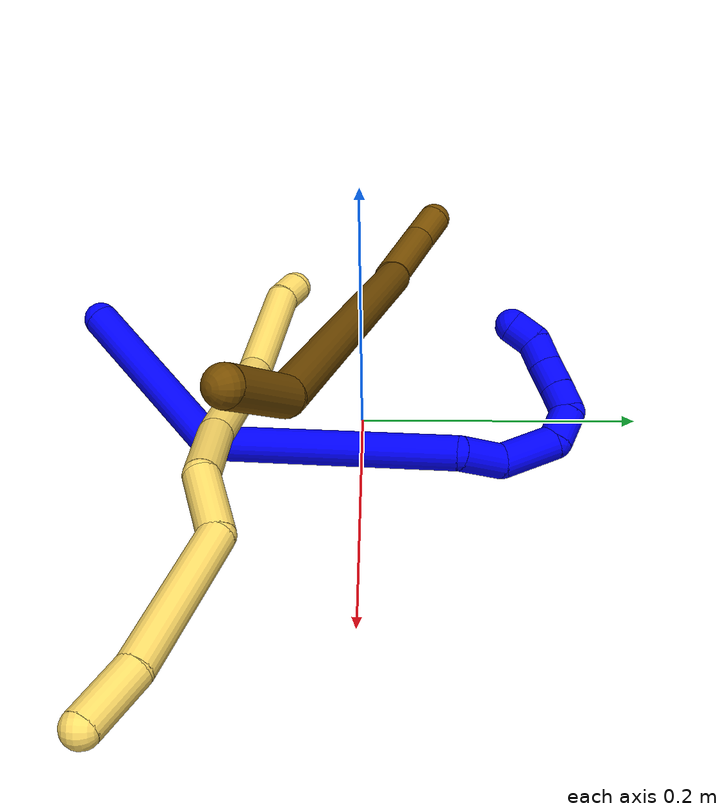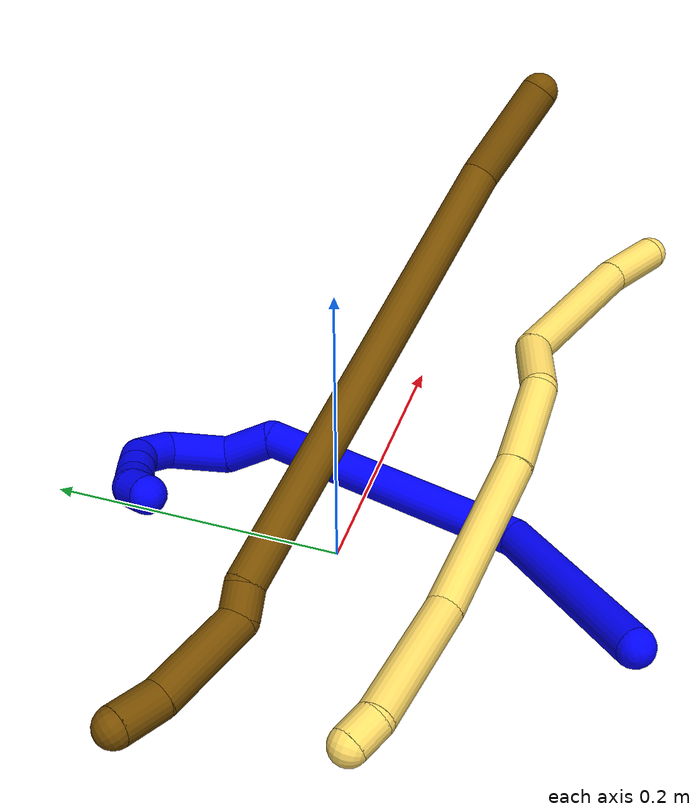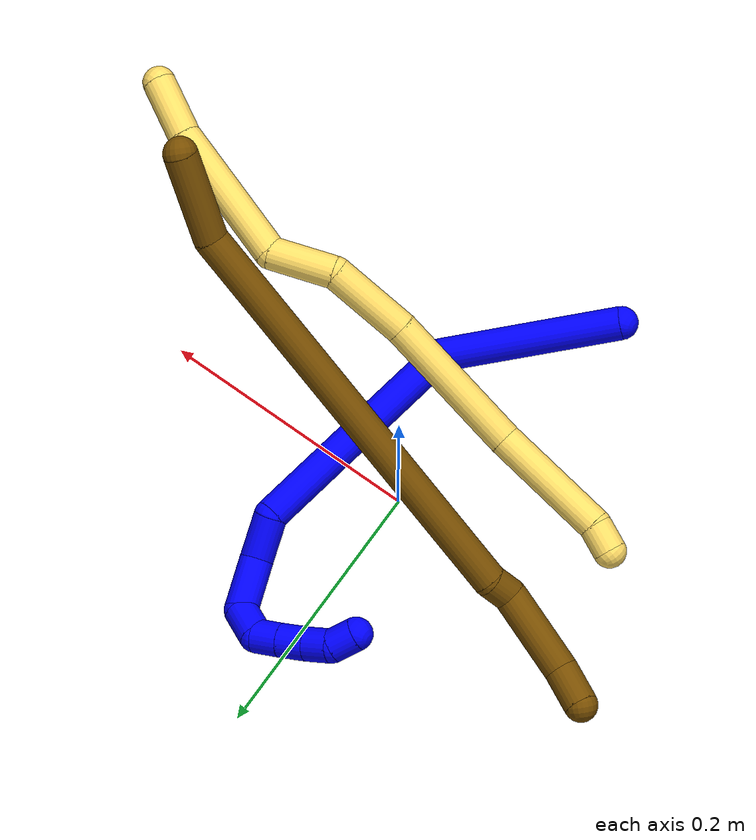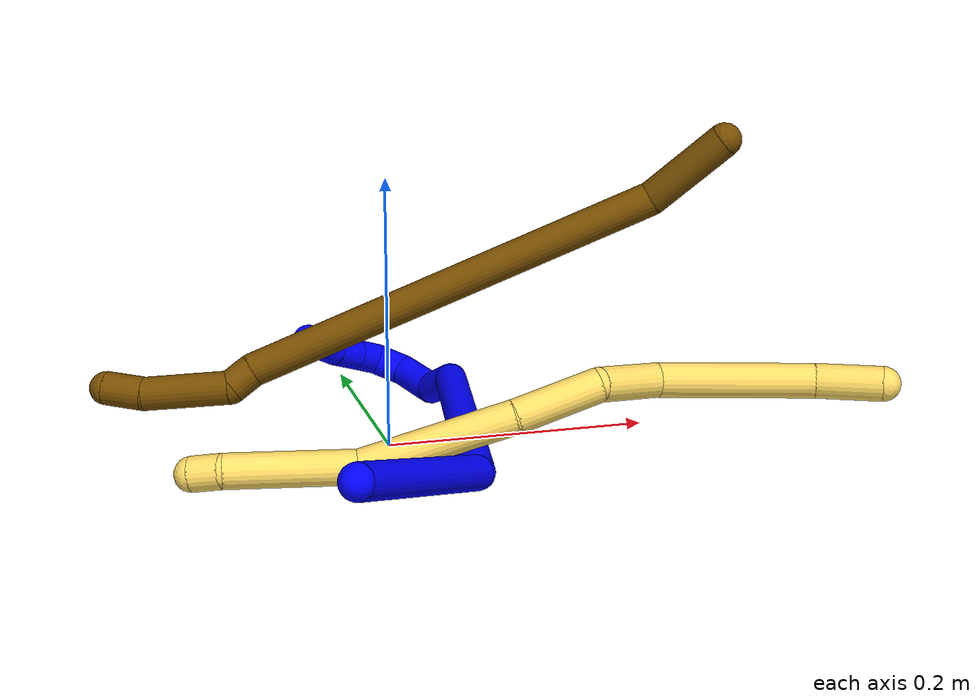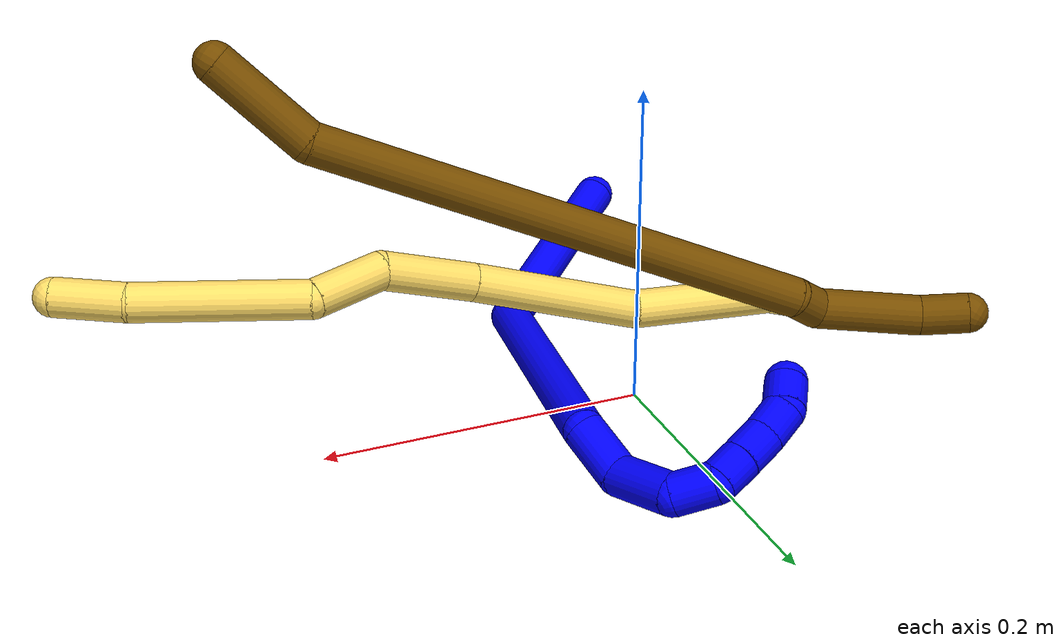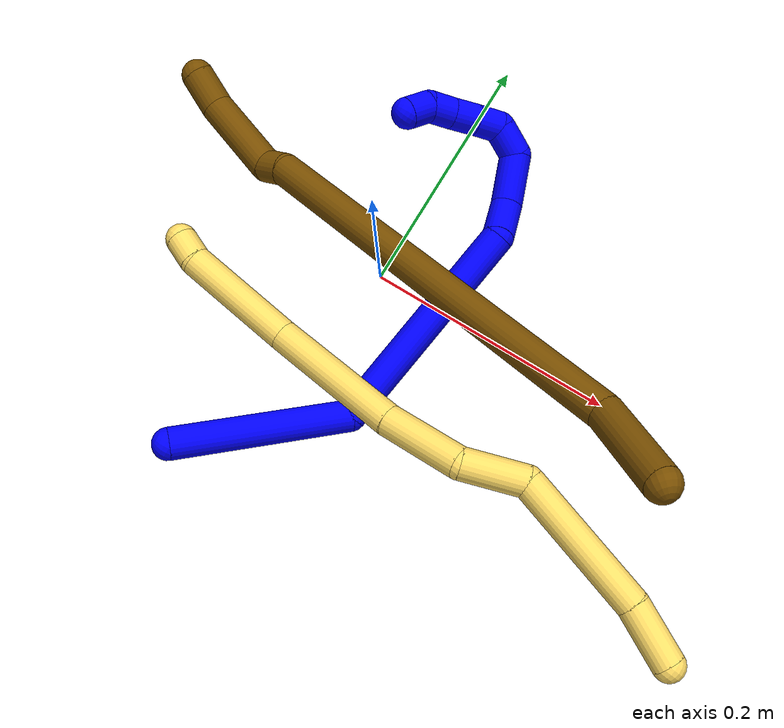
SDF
<sdf version="1.7">
 <world name="default">
  <model name="photoneo_s_sensor">
   <static>1</static>
   <pose>0 0 2 1.57079 1.57079 3.14159</pose>
   <link name="link">
    <inertial><mass>0.1</mass></inertial>
    <sensor name="sensor" type="depth">
     <update_rate>30</update_rate>
     <camera>
      <horizontal_fov>1.22</horizontal_fov>
      <image><width>1920</width><height>1200</height><format>B8G8R8</format></image>
      <clip><near>0.1</near><far>4</far></clip>
      <depth_camera><output>points</output></depth_camera>
     </camera>
     <plugin name="camera_plugin" filename="libgazebo_ros_depth_camera.so">
      <baseline>0.2</baseline>
      <alwaysOn>1</alwaysOn>
      <updateRate>0.0</updateRate>
      <cameraName>camera_ir</cameraName>
      <imageTopicName>/camera/color/image_raw</imageTopicName>
      <cameraInfoTopicName>/camera/color/camera_info</cameraInfoTopicName>
      <depthImageTopicName>/camera/depth/image_raw</depthImageTopicName>
      <depthImageCameraInfoTopicName>/camera/depth/camera_info</depthImageCameraInfoTopicName>
      <pointCloudTopicName>/camera/depth/points</pointCloudTopicName>
      <frameName>fr_optical</frameName>
      <pointCloudCutoff>0.1</pointCloudCutoff>
      <pointCloudCutoffMax>2.0</pointCloudCutoffMax>
      <distortionK1>0</distortionK1>
      <distortionK2>0</distortionK2>
      <distortionK3>0</distortionK3>
      <distortionT1>0</distortionT1>
      <distortionT2>0</distortionT2>
      <CxPrime>0</CxPrime>
      <Cx>0</Cx>
      <Cy>0</Cy>
      <focalLength>0</focalLength>
      <hackBaseline>0</hackBaseline>
     </plugin>
    </sensor>
   </link>
  </model>
  <model name="bin">
   <static>1</static>
   <link name="bottom">
    <collision name="collision-bottom">
     <pose>0 0 -0.01 0 -0 0</pose>
     <geometry><box><size>0.8 0.6 0.02</size></box></geometry>
     <surface>
      <friction><ode><mu>100</mu><mu2>100</mu2></ode></friction>
      <contact><collide_bitmask>65535</collide_bitmask></contact>
     </surface>
    </collision>
   </link>
   <link name="west_wall">
    <collision name="collision-west_wall">
     <pose>-0.41 0 0.1 0 -0 0</pose>
     <geometry><box><size>0.02 0.6 0.2</size></box></geometry>
     <surface>
      <friction><ode><mu>100</mu><mu2>100</mu2></ode></friction>
      <contact><collide_bitmask>65535</collide_bitmask></contact>
     </surface>
    </collision>
   </link>
   <link name="east_wall">
    <collision name="collision-east_wall">
     <pose>0.41 0 0.1 0 -0 0</pose>
     <geometry><box><size>0.02 0.6 0.2</size></box></geometry>
     <surface>
      <friction><ode><mu>100</mu><mu2>100</mu2></ode></friction>
      <contact><collide_bitmask>65535</collide_bitmask></contact>
     </surface>
    </collision>
   </link>
   <link name="south_wall">
    <collision name="collision-south_wall">
     <pose>0 -0.31 0.1 0 -0 0</pose>
     <geometry><box><size>0.8 0.02 0.2</size></box></geometry>
     <surface>
      <friction><ode><mu>100</mu><mu2>100</mu2></ode></friction>
      <contact><collide_bitmask>65535</collide_bitmask></contact>
     </surface>
    </collision>
   </link>
   <link name="north_wall">
    <collision name="collision-north_wall">
     <pose>0 0.31 0.1 0 -0 0</pose>
     <geometry><box><size>0.8 0.02 0.2</size></box></geometry>
     <surface>
      <friction><ode><mu>100</mu><mu2>100</mu2></ode></friction>
      <contact><collide_bitmask>65535</collide_bitmask></contact>
     </surface>
    </collision>
   </link>
  </model>
  <model name="1">
   <static>0</static>
   <link name="1">
    <collision name="collision-cylinder-e_1_1_4">
     <pose>0.007021 0.038446 -0.056787 -2.54646 0.102026 -0.329949</pose>
     <geometry><cylinder><radius>0.0125</radius><length>0.137871</length></cylinder></geometry>
     <surface>
      <friction><ode><mu>1.16</mu><mu2>1.16</mu2><slip1>0</slip1><slip2>0</slip2></ode></friction>
      <contact><ode><kp>1e+06</kp><kd>1</kd><max_vel>0</max_vel><min_depth>0.001</min_depth></ode></contact>
     </surface>
    </collision>
    <visual name="visual-cylinder-e_1_1_4">
     <pose>0.007021 0.038446 -0.056787 -2.54646 0.102026 -0.329949</pose>
     <geometry><cylinder><radius>0.0125</radius><length>0.137871</length></cylinder></geometry>
     <material><ambient>0 0 1 1</ambient></material>
    </visual>
    <collision name="collision-cylinder-e_2_4_5">
     <pose>0.035803 0.161761 -0.131811 -1.78247 0.245619 -0.3032</pose>
     <geometry><cylinder><radius>0.0125</radius><length>0.178985</length></cylinder></geometry>
     <surface>
      <friction><ode><mu>1.16</mu><mu2>1.16</mu2><slip1>0</slip1><slip2>0</slip2></ode></friction>
      <contact><ode><kp>1e+06</kp><kd>1</kd><max_vel>0</max_vel><min_depth>0.001</min_depth></ode></contact>
     </surface>
    </collision>
    <visual name="visual-cylinder-e_2_4_5">
     <pose>0.035803 0.161761 -0.131811 -1.78247 0.245619 -0.3032</pose>
     <geometry><cylinder><radius>0.0125</radius><length>0.178985</length></cylinder></geometry>
     <material><ambient>0 0 1 1</ambient></material>
    </visual>
    <collision name="collision-cylinder-e_3_5_6">
     <pose>0.050543 0.262602 -0.150451 -1.59594 -0.414039 0.424275</pose>
     <geometry><cylinder><radius>0.0125</radius><length>0.034903</length></cylinder></geometry>
     <surface>
      <friction><ode><mu>1.16</mu><mu2>1.16</mu2><slip1>0</slip1><slip2>0</slip2></ode></friction>
      <contact><ode><kp>1e+06</kp><kd>1</kd><max_vel>0</max_vel><min_depth>0.001</min_depth></ode></contact>
     </surface>
    </collision>
    <visual name="visual-cylinder-e_3_5_6">
     <pose>0.050543 0.262602 -0.150451 -1.59594 -0.414039 0.424275</pose>
     <geometry><cylinder><radius>0.0125</radius><length>0.034903</length></cylinder></geometry>
     <material><ambient>0 0 1 1</ambient></material>
    </visual>
    <collision name="collision-cylinder-e_4_6_7">
     <pose>0.045719 0.298369 -0.145038 -1.28511 0.106073 -0.079431</pose>
     <geometry><cylinder><radius>0.0125</radius><length>0.041497</length></cylinder></geometry>
     <surface>
      <friction><ode><mu>1.16</mu><mu2>1.16</mu2><slip1>0</slip1><slip2>0</slip2></ode></friction>
      <contact><ode><kp>1e+06</kp><kd>1</kd><max_vel>0</max_vel><min_depth>0.001</min_depth></ode></contact>
     </surface>
    </collision>
    <visual name="visual-cylinder-e_4_6_7">
     <pose>0.045719 0.298369 -0.145038 -1.28511 0.106073 -0.079431</pose>
     <geometry><cylinder><radius>0.0125</radius><length>0.041497</length></cylinder></geometry>
     <material><ambient>0 0 1 1</ambient></material>
    </visual>
    <collision name="collision-cylinder-e_5_7_8">
     <pose>0.048677 0.324399 -0.128197 -0.514532 0.060035 -0.0158</pose>
     <geometry><cylinder><radius>0.0125</radius><length>0.02538</length></cylinder></geometry>
     <surface>
      <friction><ode><mu>1.16</mu><mu2>1.16</mu2><slip1>0</slip1><slip2>0</slip2></ode></friction>
      <contact><ode><kp>1e+06</kp><kd>1</kd><max_vel>0</max_vel><min_depth>0.001</min_depth></ode></contact>
     </surface>
    </collision>
    <visual name="visual-cylinder-e_5_7_8">
     <pose>0.048677 0.324399 -0.128197 -0.514532 0.060035 -0.0158</pose>
     <geometry><cylinder><radius>0.0125</radius><length>0.02538</length></cylinder></geometry>
     <material><ambient>0 0 1 1</ambient></material>
    </visual>
    <collision name="collision-cylinder-e_6_8_9">
     <pose>0.048938 0.328246 -0.107415 0.239973 -0.049736 -0.005998</pose>
     <geometry><cylinder><radius>0.0125</radius><length>0.020109</length></cylinder></geometry>
     <surface>
      <friction><ode><mu>1.16</mu><mu2>1.16</mu2><slip1>0</slip1><slip2>0</slip2></ode></friction>
      <contact><ode><kp>1e+06</kp><kd>1</kd><max_vel>0</max_vel><min_depth>0.001</min_depth></ode></contact>
     </surface>
    </collision>
    <visual name="visual-cylinder-e_6_8_9">
     <pose>0.048938 0.328246 -0.107415 0.239973 -0.049736 -0.005998</pose>
     <geometry><cylinder><radius>0.0125</radius><length>0.020109</length></cylinder></geometry>
     <material><ambient>0 0 1 1</ambient></material>
    </visual>
    <collision name="collision-cylinder-e_7_9_10">
     <pose>0.047911 0.323024 -0.087527 0.27279 -0.050065 -0.006873</pose>
     <geometry><cylinder><radius>0.0125</radius><length>0.021072</length></cylinder></geometry>
     <surface>
      <friction><ode><mu>1.16</mu><mu2>1.16</mu2><slip1>0</slip1><slip2>0</slip2></ode></friction>
      <contact><ode><kp>1e+06</kp><kd>1</kd><max_vel>0</max_vel><min_depth>0.001</min_depth></ode></contact>
     </surface>
    </collision>
    <visual name="visual-cylinder-e_7_9_10">
     <pose>0.047911 0.323024 -0.087527 0.27279 -0.050065 -0.006873</pose>
     <geometry><cylinder><radius>0.0125</radius><length>0.021072</length></cylinder></geometry>
     <material><ambient>0 0 1 1</ambient></material>
    </visual>
    <collision name="collision-cylinder-e_8_10_11">
     <pose>0.048265 0.317351 -0.06779 0.287287 0.087772 0.012703</pose>
     <geometry><cylinder><radius>0.0125</radius><length>0.020106</length></cylinder></geometry>
     <surface>
      <friction><ode><mu>1.16</mu><mu2>1.16</mu2><slip1>0</slip1><slip2>0</slip2></ode></friction>
      <contact><ode><kp>1e+06</kp><kd>1</kd><max_vel>0</max_vel><min_depth>0.001</min_depth></ode></contact>
     </surface>
    </collision>
    <visual name="visual-cylinder-e_8_10_11">
     <pose>0.048265 0.317351 -0.06779 0.287287 0.087772 0.012703</pose>
     <geometry><cylinder><radius>0.0125</radius><length>0.020106</length></cylinder></geometry>
     <material><ambient>0 0 1 1</ambient></material>
    </visual>
    <collision name="collision-cylinder-e_9_11_2">
     <pose>0.049776 0.307043 -0.051511 0.841617 0.062762 0.028096</pose>
     <geometry><cylinder><radius>0.0125</radius><length>0.020076</length></cylinder></geometry>
     <surface>
      <friction><ode><mu>1.16</mu><mu2>1.16</mu2><slip1>0</slip1><slip2>0</slip2></ode></friction>
      <contact><ode><kp>1e+06</kp><kd>1</kd><max_vel>0</max_vel><min_depth>0.001</min_depth></ode></contact>
     </surface>
    </collision>
    <visual name="visual-cylinder-e_9_11_2">
     <pose>0.049776 0.307043 -0.051511 0.841617 0.062762 0.028096</pose>
     <geometry><cylinder><radius>0.0125</radius><length>0.020076</length></cylinder></geometry>
     <material><ambient>0 0 1 1</ambient></material>
    </visual>
    <collision name="collision-sphere-2">
     <pose>0.050405 0.299572 -0.044836 0 -0 0</pose>
     <geometry><sphere><radius>0.0125</radius></sphere></geometry>
     <surface>
      <friction><ode><mu>1.16</mu><mu2>1.16</mu2><slip1>0</slip1><slip2>0</slip2></ode></friction>
      <contact><ode><kp>1e+06</kp><kd>1</kd><max_vel>0</max_vel><min_depth>0.001</min_depth></ode></contact>
     </surface>
    </collision>
    <visual name="visual-sphere-2">
     <pose>0.050405 0.299572 -0.044836 0 -0 0</pose>
     <geometry><sphere><radius>0.0125</radius></sphere></geometry>
     <material><ambient>0 0 1 1</ambient></material>
    </visual>
    <collision name="collision-sphere-11">
     <pose>0.049146 0.314514 -0.058185 0 -0 0</pose>
     <geometry><sphere><radius>0.0125</radius></sphere></geometry>
     <surface>
      <friction><ode><mu>1.16</mu><mu2>1.16</mu2><slip1>0</slip1><slip2>0</slip2></ode></friction>
      <contact><ode><kp>1e+06</kp><kd>1</kd><max_vel>0</max_vel><min_depth>0.001</min_depth></ode></contact>
     </surface>
    </collision>
    <visual name="visual-sphere-11">
     <pose>0.049146 0.314514 -0.058185 0 -0 0</pose>
     <geometry><sphere><radius>0.0125</radius></sphere></geometry>
     <material><ambient>0 0 1 1</ambient></material>
    </visual>
    <collision name="collision-sphere-10">
     <pose>0.047384 0.320189 -0.077394 0 -0 0</pose>
     <geometry><sphere><radius>0.0125</radius></sphere></geometry>
     <surface>
      <friction><ode><mu>1.16</mu><mu2>1.16</mu2><slip1>0</slip1><slip2>0</slip2></ode></friction>
      <contact><ode><kp>1e+06</kp><kd>1</kd><max_vel>0</max_vel><min_depth>0.001</min_depth></ode></contact>
     </surface>
    </collision>
    <visual name="visual-sphere-10">
     <pose>0.047384 0.320189 -0.077394 0 -0 0</pose>
     <geometry><sphere><radius>0.0125</radius></sphere></geometry>
     <material><ambient>0 0 1 1</ambient></material>
    </visual>
    <collision name="collision-sphere-9">
     <pose>0.048438 0.325859 -0.097661 0 -0 0</pose>
     <geometry><sphere><radius>0.0125</radius></sphere></geometry>
     <surface>
      <friction><ode><mu>1.16</mu><mu2>1.16</mu2><slip1>0</slip1><slip2>0</slip2></ode></friction>
      <contact><ode><kp>1e+06</kp><kd>1</kd><max_vel>0</max_vel><min_depth>0.001</min_depth></ode></contact>
     </surface>
    </collision>
    <visual name="visual-sphere-9">
     <pose>0.048438 0.325859 -0.097661 0 -0 0</pose>
     <geometry><sphere><radius>0.0125</radius></sphere></geometry>
     <material><ambient>0 0 1 1</ambient></material>
    </visual>
    <collision name="collision-sphere-4">
     <pose>0.014042 0.076892 -0.113574 0 -0 0</pose>
     <geometry><sphere><radius>0.0125</radius></sphere></geometry>
     <surface>
      <friction><ode><mu>1.16</mu><mu2>1.16</mu2><slip1>0</slip1><slip2>0</slip2></ode></friction>
      <contact><ode><kp>1e+06</kp><kd>1</kd><max_vel>0</max_vel><min_depth>0.001</min_depth></ode></contact>
     </surface>
    </collision>
    <visual name="visual-sphere-4">
     <pose>0.014042 0.076892 -0.113574 0 -0 0</pose>
     <geometry><sphere><radius>0.0125</radius></sphere></geometry>
     <material><ambient>0 0 1 1</ambient></material>
    </visual>
    <collision name="collision-sphere-1">
     <geometry><sphere><radius>0.0125</radius></sphere></geometry>
     <surface>
      <friction><ode><mu>1.16</mu><mu2>1.16</mu2><slip1>0</slip1><slip2>0</slip2></ode></friction>
      <contact><ode><kp>1e+06</kp><kd>1</kd><max_vel>0</max_vel><min_depth>0.001</min_depth></ode></contact>
     </surface>
    </collision>
    <visual name="visual-sphere-1">
     <geometry><sphere><radius>0.0125</radius></sphere></geometry>
     <material><ambient>0 0 1 1</ambient></material>
    </visual>
    <collision name="collision-sphere-8">
     <pose>0.049438 0.330633 -0.11717 0 -0 0</pose>
     <geometry><sphere><radius>0.0125</radius></sphere></geometry>
     <surface>
      <friction><ode><mu>1.16</mu><mu2>1.16</mu2><slip1>0</slip1><slip2>0</slip2></ode></friction>
      <contact><ode><kp>1e+06</kp><kd>1</kd><max_vel>0</max_vel><min_depth>0.001</min_depth></ode></contact>
     </surface>
    </collision>
    <visual name="visual-sphere-8">
     <pose>0.049438 0.330633 -0.11717 0 -0 0</pose>
     <geometry><sphere><radius>0.0125</radius></sphere></geometry>
     <material><ambient>0 0 1 1</ambient></material>
    </visual>
    <collision name="collision-sphere-5">
     <pose>0.057564 0.24663 -0.150049 0 -0 0</pose>
     <geometry><sphere><radius>0.0125</radius></sphere></geometry>
     <surface>
      <friction><ode><mu>1.16</mu><mu2>1.16</mu2><slip1>0</slip1><slip2>0</slip2></ode></friction>
      <contact><ode><kp>1e+06</kp><kd>1</kd><max_vel>0</max_vel><min_depth>0.001</min_depth></ode></contact>
     </surface>
    </collision>
    <visual name="visual-sphere-5">
     <pose>0.057564 0.24663 -0.150049 0 -0 0</pose>
     <geometry><sphere><radius>0.0125</radius></sphere></geometry>
     <material><ambient>0 0 1 1</ambient></material>
    </visual>
    <collision name="collision-sphere-6">
     <pose>0.043522 0.278574 -0.150852 0 -0 0</pose>
     <geometry><sphere><radius>0.0125</radius></sphere></geometry>
     <surface>
      <friction><ode><mu>1.16</mu><mu2>1.16</mu2><slip1>0</slip1><slip2>0</slip2></ode></friction>
      <contact><ode><kp>1e+06</kp><kd>1</kd><max_vel>0</max_vel><min_depth>0.001</min_depth></ode></contact>
     </surface>
    </collision>
    <visual name="visual-sphere-6">
     <pose>0.043522 0.278574 -0.150852 0 -0 0</pose>
     <geometry><sphere><radius>0.0125</radius></sphere></geometry>
     <material><ambient>0 0 1 1</ambient></material>
    </visual>
    <collision name="collision-sphere-7">
     <pose>0.047915 0.318165 -0.139224 0 -0 0</pose>
     <geometry><sphere><radius>0.0125</radius></sphere></geometry>
     <surface>
      <friction><ode><mu>1.16</mu><mu2>1.16</mu2><slip1>0</slip1><slip2>0</slip2></ode></friction>
      <contact><ode><kp>1e+06</kp><kd>1</kd><max_vel>0</max_vel><min_depth>0.001</min_depth></ode></contact>
     </surface>
    </collision>
    <visual name="visual-sphere-7">
     <pose>0.047915 0.318165 -0.139224 0 -0 0</pose>
     <geometry><sphere><radius>0.0125</radius></sphere></geometry>
     <material><ambient>0 0 1 1</ambient></material>
    </visual>
    <inertial>
     <pose>0.032473 0.179972 -0.104693 0 -0 0</pose>
     <mass>0.5</mass>
     <inertia>
      <ixx>0.000472</ixx>
      <ixy>0</ixy>
      <ixz>0</ixz>
      <iyy>-0.000412</iyy>
      <iyz>0</iyz>
      <izz>-0.000738</izz>
     </inertia>
    </inertial>
   </link>
   <pose>-0.061044 -0.196663 0.04571 -0.169611 -1.18303 0.291144</pose>
  </model>
  <model name="5">
   <static>0</static>
   <link name="5">
    <collision name="collision-cylinder-e_1_1_4">
     <pose>-0.02041 0.007263 -0.008837 -2.45363 -1.05994 2.04404</pose>
     <geometry><cylinder><radius>0.0125</radius><length>0.046793</length></cylinder></geometry>
     <surface>
      <friction><ode><mu>1.16</mu><mu2>1.16</mu2><slip1>0</slip1><slip2>0</slip2></ode></friction>
      <contact><ode><kp>1e+06</kp><kd>1</kd><max_vel>0</max_vel><min_depth>0.001</min_depth></ode></contact>
     </surface>
    </collision>
    <visual name="visual-cylinder-e_1_1_4">
     <pose>-0.02041 0.007263 -0.008837 -2.45363 -1.05994 2.04404</pose>
     <geometry><cylinder><radius>0.0125</radius><length>0.046793</length></cylinder></geometry>
     <material><ambient>1 0.858824 0.4 1</ambient></material>
    </visual>
    <collision name="collision-cylinder-e_2_4_5">
     <pose>-0.091836 0.034262 -0.02915 -2.0975 -1.15004 1.68965</pose>
     <geometry><cylinder><radius>0.0125</radius><length>0.111784</length></cylinder></geometry>
     <surface>
      <friction><ode><mu>1.16</mu><mu2>1.16</mu2><slip1>0</slip1><slip2>0</slip2></ode></friction>
      <contact><ode><kp>1e+06</kp><kd>1</kd><max_vel>0</max_vel><min_depth>0.001</min_depth></ode></contact>
     </surface>
    </collision>
    <visual name="visual-cylinder-e_2_4_5">
     <pose>-0.091836 0.034262 -0.02915 -2.0975 -1.15004 1.68965</pose>
     <geometry><cylinder><radius>0.0125</radius><length>0.111784</length></cylinder></geometry>
     <material><ambient>1 0.858824 0.4 1</ambient></material>
    </visual>
    <collision name="collision-cylinder-e_3_5_6">
     <pose>-0.163153 0.065902 -0.030871 -0.884307 -0.922065 0.46193</pose>
     <geometry><cylinder><radius>0.0125</radius><length>0.05095</length></cylinder></geometry>
     <surface>
      <friction><ode><mu>1.16</mu><mu2>1.16</mu2><slip1>0</slip1><slip2>0</slip2></ode></friction>
      <contact><ode><kp>1e+06</kp><kd>1</kd><max_vel>0</max_vel><min_depth>0.001</min_depth></ode></contact>
     </surface>
    </collision>
    <visual name="visual-cylinder-e_3_5_6">
     <pose>-0.163153 0.065902 -0.030871 -0.884307 -0.922065 0.46193</pose>
     <geometry><cylinder><radius>0.0125</radius><length>0.05095</length></cylinder></geometry>
     <material><ambient>1 0.858824 0.4 1</ambient></material>
    </visual>
    <collision name="collision-cylinder-e_4_6_7">
     <pose>-0.214784 0.081171 -0.017434 -0.740371 -1.41297 0.639656</pose>
     <geometry><cylinder><radius>0.0125</radius><length>0.063451</length></cylinder></geometry>
     <surface>
      <friction><ode><mu>1.16</mu><mu2>1.16</mu2><slip1>0</slip1><slip2>0</slip2></ode></friction>
      <contact><ode><kp>1e+06</kp><kd>1</kd><max_vel>0</max_vel><min_depth>0.001</min_depth></ode></contact>
     </surface>
    </collision>
    <visual name="visual-cylinder-e_4_6_7">
     <pose>-0.214784 0.081171 -0.017434 -0.740371 -1.41297 0.639656</pose>
     <geometry><cylinder><radius>0.0125</radius><length>0.063451</length></cylinder></geometry>
     <material><ambient>1 0.858824 0.4 1</ambient></material>
    </visual>
    <collision name="collision-cylinder-e_5_7_8">
     <pose>-0.302026 0.090715 -0.014211 -1.64473 -1.46039 1.53418</pose>
     <geometry><cylinder><radius>0.0125</radius><length>0.112506</length></cylinder></geometry>
     <surface>
      <friction><ode><mu>1.16</mu><mu2>1.16</mu2><slip1>0</slip1><slip2>0</slip2></ode></friction>
      <contact><ode><kp>1e+06</kp><kd>1</kd><max_vel>0</max_vel><min_depth>0.001</min_depth></ode></contact>
     </surface>
    </collision>
    <visual name="visual-cylinder-e_5_7_8">
     <pose>-0.302026 0.090715 -0.014211 -1.64473 -1.46039 1.53418</pose>
     <geometry><cylinder><radius>0.0125</radius><length>0.112506</length></cylinder></geometry>
     <material><ambient>1 0.858824 0.4 1</ambient></material>
    </visual>
    <collision name="collision-cylinder-e_6_8_9">
     <pose>-0.400447 0.114932 -0.016615 -1.67831 -1.16746 1.26849</pose>
     <geometry><cylinder><radius>0.0125</radius><length>0.09244</length></cylinder></geometry>
     <surface>
      <friction><ode><mu>1.16</mu><mu2>1.16</mu2><slip1>0</slip1><slip2>0</slip2></ode></friction>
      <contact><ode><kp>1e+06</kp><kd>1</kd><max_vel>0</max_vel><min_depth>0.001</min_depth></ode></contact>
     </surface>
    </collision>
    <visual name="visual-cylinder-e_6_8_9">
     <pose>-0.400447 0.114932 -0.016615 -1.67831 -1.16746 1.26849</pose>
     <geometry><cylinder><radius>0.0125</radius><length>0.09244</length></cylinder></geometry>
     <material><ambient>1 0.858824 0.4 1</ambient></material>
    </visual>
    <collision name="collision-cylinder-e_7_9_2">
     <pose>-0.453274 0.135247 -0.021761 -2.52271 -1.20696 2.27297</pose>
     <geometry><cylinder><radius>0.0125</radius><length>0.022076</length></cylinder></geometry>
     <surface>
      <friction><ode><mu>1.16</mu><mu2>1.16</mu2><slip1>0</slip1><slip2>0</slip2></ode></friction>
      <contact><ode><kp>1e+06</kp><kd>1</kd><max_vel>0</max_vel><min_depth>0.001</min_depth></ode></contact>
     </surface>
    </collision>
    <visual name="visual-cylinder-e_7_9_2">
     <pose>-0.453274 0.135247 -0.021761 -2.52271 -1.20696 2.27297</pose>
     <geometry><cylinder><radius>0.0125</radius><length>0.022076</length></cylinder></geometry>
     <material><ambient>1 0.858824 0.4 1</ambient></material>
    </visual>
    <collision name="collision-sphere-2">
     <pose>-0.463589 0.137526 -0.024961 0 -0 0</pose>
     <geometry><sphere><radius>0.0125</radius></sphere></geometry>
     <surface>
      <friction><ode><mu>1.16</mu><mu2>1.16</mu2><slip1>0</slip1><slip2>0</slip2></ode></friction>
      <contact><ode><kp>1e+06</kp><kd>1</kd><max_vel>0</max_vel><min_depth>0.001</min_depth></ode></contact>
     </surface>
    </collision>
    <visual name="visual-sphere-2">
     <pose>-0.463589 0.137526 -0.024961 0 -0 0</pose>
     <geometry><sphere><radius>0.0125</radius></sphere></geometry>
     <material><ambient>1 0.858824 0.4 1</ambient></material>
    </visual>
    <collision name="collision-sphere-9">
     <pose>-0.442958 0.132968 -0.018562 0 -0 0</pose>
     <geometry><sphere><radius>0.0125</radius></sphere></geometry>
     <surface>
      <friction><ode><mu>1.16</mu><mu2>1.16</mu2><slip1>0</slip1><slip2>0</slip2></ode></friction>
      <contact><ode><kp>1e+06</kp><kd>1</kd><max_vel>0</max_vel><min_depth>0.001</min_depth></ode></contact>
     </surface>
    </collision>
    <visual name="visual-sphere-9">
     <pose>-0.442958 0.132968 -0.018562 0 -0 0</pose>
     <geometry><sphere><radius>0.0125</radius></sphere></geometry>
     <material><ambient>1 0.858824 0.4 1</ambient></material>
    </visual>
    <collision name="collision-sphere-4">
     <pose>-0.040819 0.014527 -0.017675 0 -0 0</pose>
     <geometry><sphere><radius>0.0125</radius></sphere></geometry>
     <surface>
      <friction><ode><mu>1.16</mu><mu2>1.16</mu2><slip1>0</slip1><slip2>0</slip2></ode></friction>
      <contact><ode><kp>1e+06</kp><kd>1</kd><max_vel>0</max_vel><min_depth>0.001</min_depth></ode></contact>
     </surface>
    </collision>
    <visual name="visual-sphere-4">
     <pose>-0.040819 0.014527 -0.017675 0 -0 0</pose>
     <geometry><sphere><radius>0.0125</radius></sphere></geometry>
     <material><ambient>1 0.858824 0.4 1</ambient></material>
    </visual>
    <collision name="collision-sphere-1">
     <geometry><sphere><radius>0.0125</radius></sphere></geometry>
     <surface>
      <friction><ode><mu>1.16</mu><mu2>1.16</mu2><slip1>0</slip1><slip2>0</slip2></ode></friction>
      <contact><ode><kp>1e+06</kp><kd>1</kd><max_vel>0</max_vel><min_depth>0.001</min_depth></ode></contact>
     </surface>
    </collision>
    <visual name="visual-sphere-1">
     <geometry><sphere><radius>0.0125</radius></sphere></geometry>
     <material><ambient>1 0.858824 0.4 1</ambient></material>
    </visual>
    <collision name="collision-sphere-8">
     <pose>-0.357936 0.096896 -0.014669 0 -0 0</pose>
     <geometry><sphere><radius>0.0125</radius></sphere></geometry>
     <surface>
      <friction><ode><mu>1.16</mu><mu2>1.16</mu2><slip1>0</slip1><slip2>0</slip2></ode></friction>
      <contact><ode><kp>1e+06</kp><kd>1</kd><max_vel>0</max_vel><min_depth>0.001</min_depth></ode></contact>
     </surface>
    </collision>
    <visual name="visual-sphere-8">
     <pose>-0.357936 0.096896 -0.014669 0 -0 0</pose>
     <geometry><sphere><radius>0.0125</radius></sphere></geometry>
     <material><ambient>1 0.858824 0.4 1</ambient></material>
    </visual>
    <collision name="collision-sphere-5">
     <pose>-0.142853 0.053997 -0.040626 0 -0 0</pose>
     <geometry><sphere><radius>0.0125</radius></sphere></geometry>
     <surface>
      <friction><ode><mu>1.16</mu><mu2>1.16</mu2><slip1>0</slip1><slip2>0</slip2></ode></friction>
      <contact><ode><kp>1e+06</kp><kd>1</kd><max_vel>0</max_vel><min_depth>0.001</min_depth></ode></contact>
     </surface>
    </collision>
    <visual name="visual-sphere-5">
     <pose>-0.142853 0.053997 -0.040626 0 -0 0</pose>
     <geometry><sphere><radius>0.0125</radius></sphere></geometry>
     <material><ambient>1 0.858824 0.4 1</ambient></material>
    </visual>
    <collision name="collision-sphere-6">
     <pose>-0.183453 0.077807 -0.021115 0 -0 0</pose>
     <geometry><sphere><radius>0.0125</radius></sphere></geometry>
     <surface>
      <friction><ode><mu>1.16</mu><mu2>1.16</mu2><slip1>0</slip1><slip2>0</slip2></ode></friction>
      <contact><ode><kp>1e+06</kp><kd>1</kd><max_vel>0</max_vel><min_depth>0.001</min_depth></ode></contact>
     </surface>
    </collision>
    <visual name="visual-sphere-6">
     <pose>-0.183453 0.077807 -0.021115 0 -0 0</pose>
     <geometry><sphere><radius>0.0125</radius></sphere></geometry>
     <material><ambient>1 0.858824 0.4 1</ambient></material>
    </visual>
    <collision name="collision-sphere-7">
     <pose>-0.246116 0.084534 -0.013753 0 -0 0</pose>
     <geometry><sphere><radius>0.0125</radius></sphere></geometry>
     <surface>
      <friction><ode><mu>1.16</mu><mu2>1.16</mu2><slip1>0</slip1><slip2>0</slip2></ode></friction>
      <contact><ode><kp>1e+06</kp><kd>1</kd><max_vel>0</max_vel><min_depth>0.001</min_depth></ode></contact>
     </surface>
    </collision>
    <visual name="visual-sphere-7">
     <pose>-0.246116 0.084534 -0.013753 0 -0 0</pose>
     <geometry><sphere><radius>0.0125</radius></sphere></geometry>
     <material><ambient>1 0.858824 0.4 1</ambient></material>
    </visual>
    <inertial>
     <pose>-0.22833 0.072988 -0.019933 0 -0 0</pose>
     <mass>0.5</mass>
     <inertia>
      <ixx>7.3e-05</ixx>
      <ixy>0</ixy>
      <ixz>0</ixz>
      <iyy>0.000437</iyy>
      <iyz>0</iyz>
      <izz>0.000244</izz>
     </inertia>
    </inertial>
   </link>
   <pose>0.324059 -0.145038 0.06247 1.6716 -0.397513 -0.160014</pose>
  </model>
  <model name="12">
   <static>0</static>
   <link name="12">
    <collision name="collision-cylinder-e_1_1_4">
     <pose>-0.006526 -0.010926 -0.031329 2.80604 -0.194202 -1.04385</pose>
     <geometry><cylinder><radius>0.0125</radius><length>0.06763</length></cylinder></geometry>
     <surface>
      <friction><ode><mu>1.16</mu><mu2>1.16</mu2><slip1>0</slip1><slip2>0</slip2></ode></friction>
      <contact><ode><kp>1e+06</kp><kd>1</kd><max_vel>0</max_vel><min_depth>0.001</min_depth></ode></contact>
     </surface>
    </collision>
    <visual name="visual-cylinder-e_1_1_4">
     <pose>-0.006526 -0.010926 -0.031329 2.80604 -0.194202 -1.04385</pose>
     <geometry><cylinder><radius>0.0125</radius><length>0.06763</length></cylinder></geometry>
     <material><ambient>0.466667 0.301961 0 1</ambient></material>
    </visual>
    <collision name="collision-cylinder-e_2_4_5">
     <pose>-0.094217 -0.031192 -0.198596 3.07298 -0.537229 -2.89353</pose>
     <geometry><cylinder><radius>0.0125</radius><length>0.317203</length></cylinder></geometry>
     <surface>
      <friction><ode><mu>1.16</mu><mu2>1.16</mu2><slip1>0</slip1><slip2>0</slip2></ode></friction>
      <contact><ode><kp>1e+06</kp><kd>1</kd><max_vel>0</max_vel><min_depth>0.001</min_depth></ode></contact>
     </surface>
    </collision>
    <visual name="visual-cylinder-e_2_4_5">
     <pose>-0.094217 -0.031192 -0.198596 3.07298 -0.537229 -2.89353</pose>
     <geometry><cylinder><radius>0.0125</radius><length>0.317203</length></cylinder></geometry>
     <material><ambient>0.466667 0.301961 0 1</ambient></material>
    </visual>
    <collision name="collision-cylinder-e_3_5_6">
     <pose>-0.182166 -0.043711 -0.341442 2.71037 -0.728568 -2.09883</pose>
     <geometry><cylinder><radius>0.0125</radius><length>0.020379</length></cylinder></geometry>
     <surface>
      <friction><ode><mu>1.16</mu><mu2>1.16</mu2><slip1>0</slip1><slip2>0</slip2></ode></friction>
      <contact><ode><kp>1e+06</kp><kd>1</kd><max_vel>0</max_vel><min_depth>0.001</min_depth></ode></contact>
     </surface>
    </collision>
    <visual name="visual-cylinder-e_3_5_6">
     <pose>-0.182166 -0.043711 -0.341442 2.71037 -0.728568 -2.09883</pose>
     <geometry><cylinder><radius>0.0125</radius><length>0.020379</length></cylinder></geometry>
     <material><ambient>0.466667 0.301961 0 1</ambient></material>
    </visual>
    <collision name="collision-cylinder-e_4_6_7">
     <pose>-0.202541 -0.038449 -0.376552 -2.85083 -0.4325 1.96586</pose>
     <geometry><cylinder><radius>0.0125</radius><length>0.064851</length></cylinder></geometry>
     <surface>
      <friction><ode><mu>1.16</mu><mu2>1.16</mu2><slip1>0</slip1><slip2>0</slip2></ode></friction>
      <contact><ode><kp>1e+06</kp><kd>1</kd><max_vel>0</max_vel><min_depth>0.001</min_depth></ode></contact>
     </surface>
    </collision>
    <visual name="visual-cylinder-e_4_6_7">
     <pose>-0.202541 -0.038449 -0.376552 -2.85083 -0.4325 1.96586</pose>
     <geometry><cylinder><radius>0.0125</radius><length>0.064851</length></cylinder></geometry>
     <material><ambient>0.466667 0.301961 0 1</ambient></material>
    </visual>
    <collision name="collision-cylinder-e_5_7_2">
     <pose>-0.220682 -0.023257 -0.417317 -2.64835 -0.308821 1.10751</pose>
     <geometry><cylinder><radius>0.0125</radius><length>0.029938</length></cylinder></geometry>
     <surface>
      <friction><ode><mu>1.16</mu><mu2>1.16</mu2><slip1>0</slip1><slip2>0</slip2></ode></friction>
      <contact><ode><kp>1e+06</kp><kd>1</kd><max_vel>0</max_vel><min_depth>0.001</min_depth></ode></contact>
     </surface>
    </collision>
    <visual name="visual-cylinder-e_5_7_2">
     <pose>-0.220682 -0.023257 -0.417317 -2.64835 -0.308821 1.10751</pose>
     <geometry><cylinder><radius>0.0125</radius><length>0.029938</length></cylinder></geometry>
     <material><ambient>0.466667 0.301961 0 1</ambient></material>
    </visual>
    <collision name="collision-sphere-2">
     <pose>-0.225231 -0.016505 -0.429878 0 -0 0</pose>
     <geometry><sphere><radius>0.0125</radius></sphere></geometry>
     <surface>
      <friction><ode><mu>1.16</mu><mu2>1.16</mu2><slip1>0</slip1><slip2>0</slip2></ode></friction>
      <contact><ode><kp>1e+06</kp><kd>1</kd><max_vel>0</max_vel><min_depth>0.001</min_depth></ode></contact>
     </surface>
    </collision>
    <visual name="visual-sphere-2">
     <pose>-0.225231 -0.016505 -0.429878 0 -0 0</pose>
     <geometry><sphere><radius>0.0125</radius></sphere></geometry>
     <material><ambient>0.466667 0.301961 0 1</ambient></material>
    </visual>
    <collision name="collision-sphere-7">
     <pose>-0.216132 -0.03001 -0.404756 0 -0 0</pose>
     <geometry><sphere><radius>0.0125</radius></sphere></geometry>
     <surface>
      <friction><ode><mu>1.16</mu><mu2>1.16</mu2><slip1>0</slip1><slip2>0</slip2></ode></friction>
      <contact><ode><kp>1e+06</kp><kd>1</kd><max_vel>0</max_vel><min_depth>0.001</min_depth></ode></contact>
     </surface>
    </collision>
    <visual name="visual-sphere-7">
     <pose>-0.216132 -0.03001 -0.404756 0 -0 0</pose>
     <geometry><sphere><radius>0.0125</radius></sphere></geometry>
     <material><ambient>0.466667 0.301961 0 1</ambient></material>
    </visual>
    <collision name="collision-sphere-6">
     <pose>-0.18895 -0.046889 -0.348348 0 -0 0</pose>
     <geometry><sphere><radius>0.0125</radius></sphere></geometry>
     <surface>
      <friction><ode><mu>1.16</mu><mu2>1.16</mu2><slip1>0</slip1><slip2>0</slip2></ode></friction>
      <contact><ode><kp>1e+06</kp><kd>1</kd><max_vel>0</max_vel><min_depth>0.001</min_depth></ode></contact>
     </surface>
    </collision>
    <visual name="visual-sphere-6">
     <pose>-0.18895 -0.046889 -0.348348 0 -0 0</pose>
     <geometry><sphere><radius>0.0125</radius></sphere></geometry>
     <material><ambient>0.466667 0.301961 0 1</ambient></material>
    </visual>
    <collision name="collision-sphere-5">
     <pose>-0.175382 -0.040534 -0.334535 0 -0 0</pose>
     <geometry><sphere><radius>0.0125</radius></sphere></geometry>
     <surface>
      <friction><ode><mu>1.16</mu><mu2>1.16</mu2><slip1>0</slip1><slip2>0</slip2></ode></friction>
      <contact><ode><kp>1e+06</kp><kd>1</kd><max_vel>0</max_vel><min_depth>0.001</min_depth></ode></contact>
     </surface>
    </collision>
    <visual name="visual-sphere-5">
     <pose>-0.175382 -0.040534 -0.334535 0 -0 0</pose>
     <geometry><sphere><radius>0.0125</radius></sphere></geometry>
     <material><ambient>0.466667 0.301961 0 1</ambient></material>
    </visual>
    <collision name="collision-sphere-1">
     <geometry><sphere><radius>0.0125</radius></sphere></geometry>
     <surface>
      <friction><ode><mu>1.16</mu><mu2>1.16</mu2><slip1>0</slip1><slip2>0</slip2></ode></friction>
      <contact><ode><kp>1e+06</kp><kd>1</kd><max_vel>0</max_vel><min_depth>0.001</min_depth></ode></contact>
     </surface>
    </collision>
    <visual name="visual-sphere-1">
     <geometry><sphere><radius>0.0125</radius></sphere></geometry>
     <material><ambient>0.466667 0.301961 0 1</ambient></material>
    </visual>
    <collision name="collision-sphere-4">
     <pose>-0.013051 -0.021851 -0.062658 0 -0 0</pose>
     <geometry><sphere><radius>0.0125</radius></sphere></geometry>
     <surface>
      <friction><ode><mu>1.16</mu><mu2>1.16</mu2><slip1>0</slip1><slip2>0</slip2></ode></friction>
      <contact><ode><kp>1e+06</kp><kd>1</kd><max_vel>0</max_vel><min_depth>0.001</min_depth></ode></contact>
     </surface>
    </collision>
    <visual name="visual-sphere-4">
     <pose>-0.013051 -0.021851 -0.062658 0 -0 0</pose>
     <geometry><sphere><radius>0.0125</radius></sphere></geometry>
     <material><ambient>0.466667 0.301961 0 1</ambient></material>
    </visual>
    <inertial>
     <pose>-0.107562 -0.029427 -0.217971 0 -0 0</pose>
     <mass>0.5</mass>
     <inertia>
      <ixx>-0.002802</ixx>
      <ixy>0</ixy>
      <ixz>0</ixz>
      <iyy>0.002042</iyy>
      <iyz>0</iyz>
      <izz>0.001511</izz>
     </inertia>
    </inertial>
   </link>
   <pose>0.233142 -0.064178 0.227558 1.18685 -0.029368 0.790078</pose>
  </model>
 </world>
</sdf>
